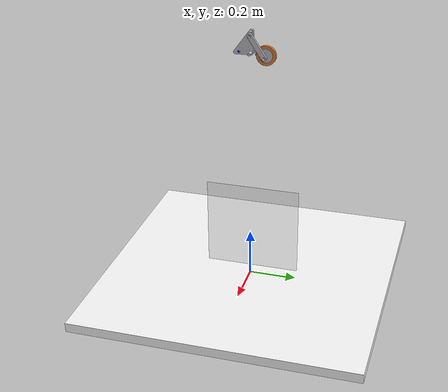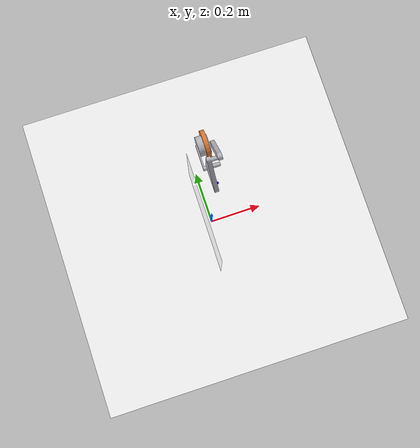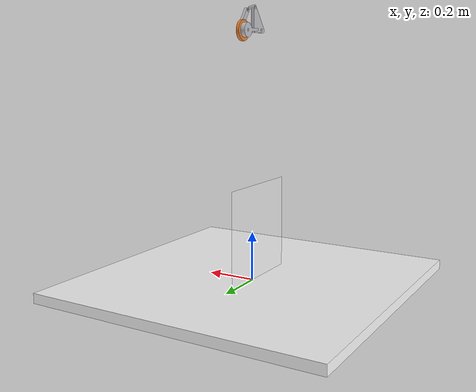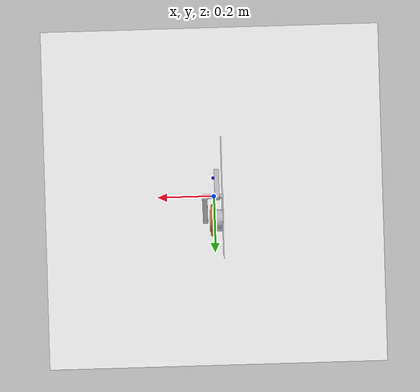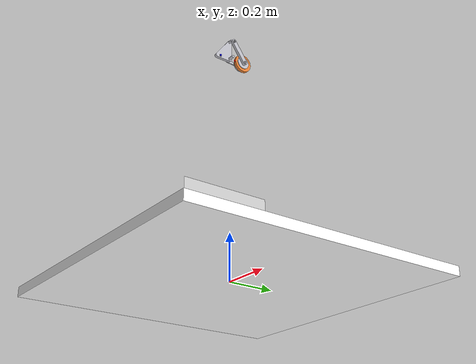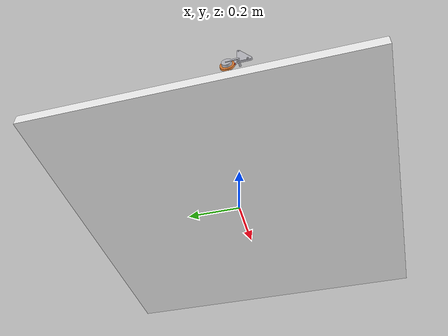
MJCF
<mujoco model="klann_leg">

  <compiler angle="degree" meshdir="meshes/"/>
  <option gravity="0 0 -9.81" timestep="0.0002"/>

  <default>
    <geom density="1200" contype="0" conaffinity="0" rgba="0.75 0.75 0.78 1"/>
    <joint type="hinge" axis="0 0 1" damping="0.002"/>
  </default>

  <asset>
    <mesh name="ground_link_m"        file="ground_link.STL"          scale="0.004 0.004 0.004"/>
    <mesh name="upper_ternary_m"      file="upper_ternary.STL"        scale="0.004 0.004 0.004"/>
    <mesh name="lower_ternary_m"      file="lower_ternary.STL"        scale="0.004 0.004 0.004"/>
    <mesh name="bent_link_m"          file="bent_link.STL"            scale="0.004 0.004 0.004"/>
    <mesh name="straight_link_m"      file="straight_link.STL"        scale="0.004 0.004 0.004"/>
    <mesh name="long_straight_link_m" file="long_straight_link.STL"   scale="0.004 0.004 0.004"/>
    <mesh name="long_bent_link_m"     file="long_bent_link.STL"       scale="0.004 0.004 0.004"/>
    <mesh name="foot_stabiliser_m"    file="foot_stabiliser_link.STL" scale="0.004 0.004 0.004"/>
    <mesh name="foot_link_m"          file="foot_link.STL"            scale="0.004 0.004 0.004"/>
    <material name="shoe_mat"
          rgba="0 .7 .7 0.6"
          emission="0.5"/>
  </asset>

  <worldbody>
    <light pos="0 0 4" dir="0 0 -1" diffuse="1 1 1"/>
    <light name="overhead_light" pos="0 0.2 1" dir="0 0 -1" diffuse="0.7 0.7 0.7"/>

    <camera name="side" pos="0 -1.2 0.2" xyaxes="1 0 0 0 0 1"/>
    <geom type="box" size="0.6 0.6 0.02" contype="1" conaffinity="1" rgba="1 1 1 1"/>
    <geom type="plane" pos="-0.028 0 0.2" size="0.2 0.2 0.2" euler="0 90 0" rgba="1 1 1 0.4"/>
    <!-- ground_link: static frame link. Body origin placed at its pivot F,
         so children hinge at (0,0,0) in this frame. -->
    <body name="ground_link" pos="0 0 1" euler="90 90 0">
      <geom name="ground_link_g" type="mesh" mesh="ground_link_m" pos="-0.006 -0.0308 -0.024"/>

      <!-- crank: throw radius is a PLACEHOLDER (see note 1); position is
           solved so the crank loop (bent_link -> upper_ternary.apex) closes
           exactly at this rest pose. -->
       <body name="crank" pos="0.064 -0.004 0.0032" euler="0 180 0" >
        <joint name="crank_joint" pos="0 0 0" type="hinge"/>
        <geom name="crank_g" type="cylinder" size="0.04 0.006" rgba="0.9 0.5 0.2 1"/>
        <site name="crank_pin" pos="0.04 0 0" size="0.004" rgba="1 0 0 1"/>

        <body name="straight_link" pos="-0.0 -0.02 -0.02" euler="0 0 -90">
            <site name="straight_link_far" pos="-0.1 0.06 0" size="0.005"/>
            <joint name = "straight_link_origin" pos="-0.015 0.0035 0"/>
            <geom name="straight_link_g" type="mesh" mesh="straight_link_m" pos="-0.0098 -0.01 -0.006" euler="0 0 60"/>

          </body>
      </body>
       <body name="upper_ternary" pos="0. 0 0">

        <joint name="upper_ternary_joint" pos="0 0 0"/>
        <geom name="upper_ternary_g" type="mesh" mesh="upper_ternary_m" pos="-0.0708 -0.0104 -0.014"/>
        <site name="upper_ternary_apex" pos="0 0.084 0" size="0.004" rgba="0 1 0 1"/>
        <site name="upper_ternary_left" pos="-0.048 0 0" size="0.004" rgba="0 0 1 1"/>
    </body>

    </body>

  </worldbody>

  <actuator>
    <velocity name="crank_velocity"
          joint="crank_joint"
          kv="4"
          ctrlrange="-1 1"/>
  </actuator>

  <equality>
 <connect name= "ternary_straight" active="true" site1="upper_ternary_apex" site2="straight_link_far"
      solref="0.02 1"
      solimp="0.8 0.95 0.01"/>
  </equality>

</mujoco>
